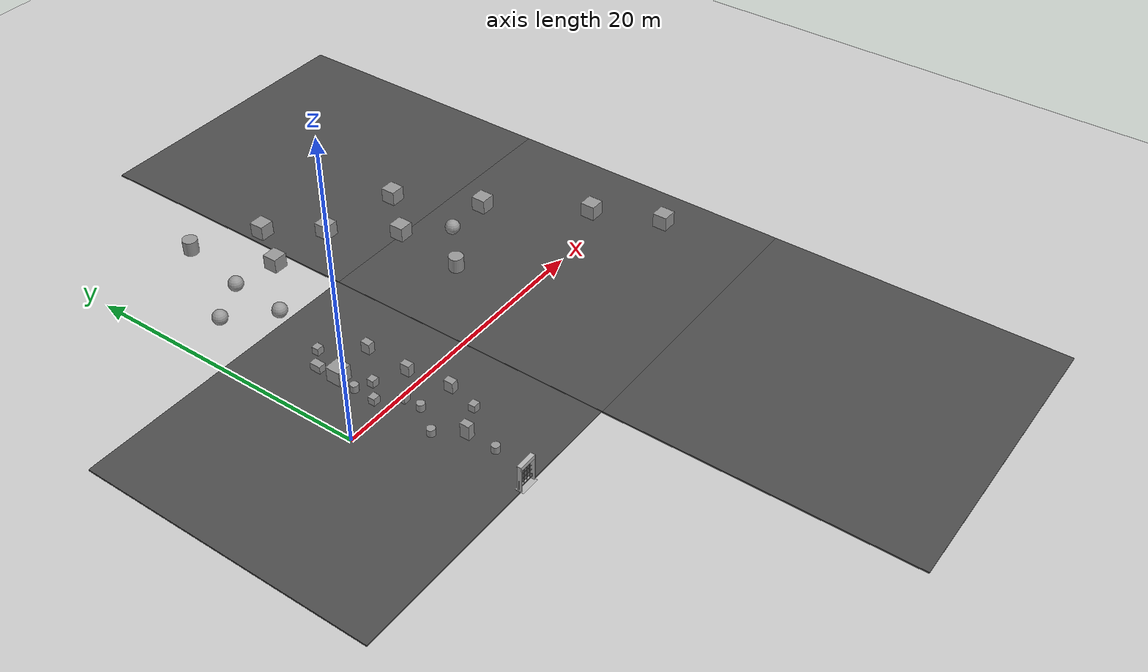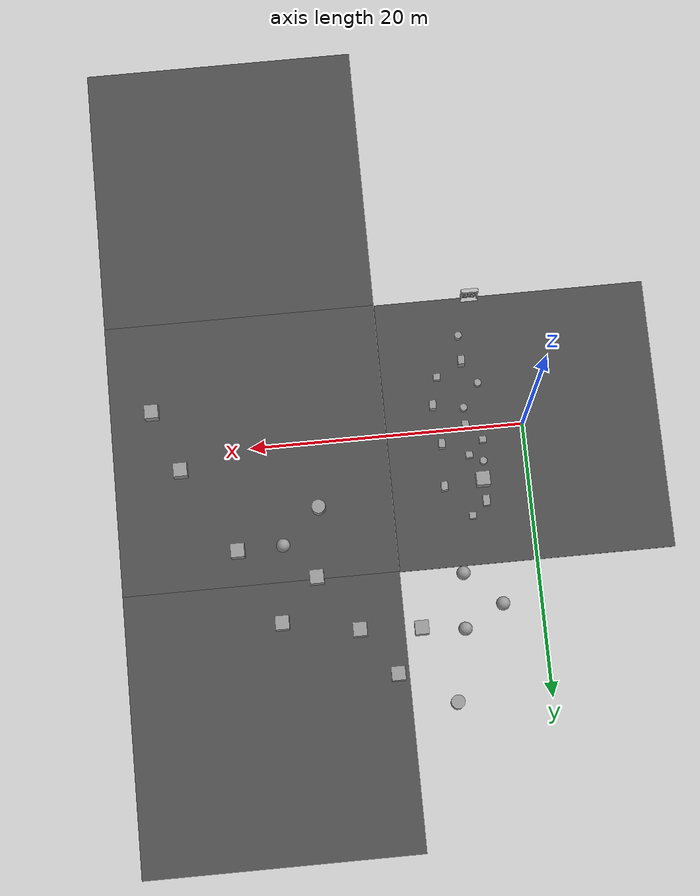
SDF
<sdf version="1.7">
 <world name="default">
  <model name="ground_plane">
   <static>1</static>
   <link name="link">
    <collision name="collision">
     <geometry><plane><normal>0 0 1</normal><size>100 100</size></plane></geometry>
     <surface>
      <contact><collide_bitmask>65535</collide_bitmask></contact>
      <friction><ode><mu>100</mu><mu2>50</mu2></ode></friction>
     </surface>
    </collision>
    <visual name="visual">
     <cast_shadows>0</cast_shadows>
     <geometry><plane><normal>0 0 1</normal><size>100 100</size></plane></geometry>
     <material>
      <script><uri>file://media/materials/scripts/gazebo.material</uri><name>Gazebo/Grey</name></script>
     </material>
    </visual>
   </link>
  </model>
  <model name="asphalt_plane">
   <static>1</static>
   <link name="link">
    <collision name="collision"><geometry><box><size>20 20 0.1</size></box></geometry></collision>
    <visual name="visual">
     <cast_shadows>0</cast_shadows>
     <geometry><box><size>20 20 0.1</size></box></geometry>
     <material>
      <script>
       <uri>model://asphalt_plane/materials/scripts</uri>
       <uri>model://asphalt_plane/materials/textures</uri>
       <name>vrc/asphalt</name>
      </script>
     </material>
    </visual>
   </link>
   <pose>-0.033327 0.054034 0 0 -0 0</pose>
  </model>
  <model name="asphalt_plane_clone">
   <static>1</static>
   <link name="link">
    <collision name="collision"><geometry><box><size>20 20 0.1</size></box></geometry></collision>
    <visual name="visual">
     <cast_shadows>0</cast_shadows>
     <geometry><box><size>20 20 0.1</size></box></geometry>
     <material>
      <script>
       <uri>model://asphalt_plane/materials/scripts</uri>
       <uri>model://asphalt_plane/materials/textures</uri>
       <name>vrc/asphalt</name>
      </script>
     </material>
    </visual>
   </link>
   <pose>20 0 0 0 -0 0</pose>
  </model>
  <model name="asphalt_plane_clone_0">
   <static>1</static>
   <link name="link">
    <collision name="collision"><geometry><box><size>20 20 0.1</size></box></geometry></collision>
    <visual name="visual">
     <cast_shadows>0</cast_shadows>
     <geometry><box><size>20 20 0.1</size></box></geometry>
     <material>
      <script>
       <uri>model://asphalt_plane/materials/scripts</uri>
       <uri>model://asphalt_plane/materials/textures</uri>
       <name>vrc/asphalt</name>
      </script>
     </material>
    </visual>
   </link>
   <pose>20 -20 0 0 -0 0</pose>
  </model>
  <model name="asphalt_plane_clone_6">
   <static>1</static>
   <link name="link">
    <collision name="collision"><geometry><box><size>20 20 0.1</size></box></geometry></collision>
    <visual name="visual">
     <cast_shadows>0</cast_shadows>
     <geometry><box><size>20 20 0.1</size></box></geometry>
     <material>
      <script>
       <uri>model://asphalt_plane/materials/scripts</uri>
       <uri>model://asphalt_plane/materials/textures</uri>
       <name>vrc/asphalt</name>
      </script>
     </material>
    </visual>
   </link>
   <pose>20 20 0 0 -0 0</pose>
  </model>
  <model name="unit_box">
   <pose>3.3249 3.92529 0.549996 9e-06 1e-06 0</pose>
   <link name="link">
    <inertial>
     <mass>1</mass>
     <inertia>
      <ixx>0.166667</ixx>
      <ixy>0</ixy>
      <ixz>0</ixz>
      <iyy>0.166667</iyy>
      <iyz>0</iyz>
      <izz>0.166667</izz>
     </inertia>
    </inertial>
    <collision name="collision"><geometry><box><size>1 1 1</size></box></geometry></collision>
    <visual name="visual">
     <geometry><box><size>1 1 1</size></box></geometry>
     <material>
      <script><name>Gazebo/Grey</name><uri>file://media/materials/scripts/gazebo.material</uri></script>
     </material>
    </visual>
   </link>
  </model>
  <model name="unit_box_0">
   <pose>4.32444 6.49188 0.301356 0 -0 1e-06</pose>
   <link name="link">
    <inertial>
     <mass>1</mass>
     <inertia>
      <ixx>0.166667</ixx>
      <ixy>0</ixy>
      <ixz>0</ixz>
      <iyy>0.166667</iyy>
      <iyz>0</iyz>
      <izz>0.166667</izz>
     </inertia>
    </inertial>
    <collision name="collision">
     <geometry><box><size>0.495294 0.467832 0.502712</size></box></geometry>
    </collision>
    <visual name="visual">
     <geometry><box><size>0.495294 0.467832 0.502712</size></box></geometry>
     <material>
      <script><name>Gazebo/Grey</name><uri>file://media/materials/scripts/gazebo.material</uri></script>
     </material>
    </visual>
   </link>
  </model>
  <model name="unit_box_0_clone">
   <pose>3.22245 5.47551 0.301351 -1.2e-05 -0 3e-06</pose>
   <link name="link">
    <inertial>
     <mass>1</mass>
     <inertia>
      <ixx>0.166667</ixx>
      <ixy>0</ixy>
      <ixz>0</ixz>
      <iyy>0.166667</iyy>
      <iyz>0</iyz>
      <izz>0.166667</izz>
     </inertia>
    </inertial>
    <collision name="collision">
     <geometry><box><size>0.495294 0.766084 0.502712</size></box></geometry>
    </collision>
    <visual name="visual">
     <geometry><box><size>0.495294 0.766084 0.502712</size></box></geometry>
     <material>
      <script><name>Gazebo/Grey</name><uri>file://media/materials/scripts/gazebo.material</uri></script>
     </material>
    </visual>
   </link>
  </model>
  <model name="unit_box_0_clone_2">
   <pose>3.02414 0.969262 0.301356 0 -0 1e-06</pose>
   <link name="link">
    <inertial>
     <mass>1</mass>
     <inertia>
      <ixx>0.166667</ixx>
      <ixy>0</ixy>
      <ixz>0</ixz>
      <iyy>0.166667</iyy>
      <iyz>0</iyz>
      <izz>0.166667</izz>
     </inertia>
    </inertial>
    <collision name="collision">
     <geometry><box><size>0.495294 0.467832 0.502712</size></box></geometry>
    </collision>
    <visual name="visual">
     <geometry><box><size>0.495294 0.467832 0.502712</size></box></geometry>
     <material>
      <script><name>Gazebo/Grey</name><uri>file://media/materials/scripts/gazebo.material</uri></script>
     </material>
    </visual>
   </link>
  </model>
  <model name="unit_box_0_clone_3">
   <pose>4.15818 -0.316674 0.301356 0 -0 1e-06</pose>
   <link name="link">
    <inertial>
     <mass>1</mass>
     <inertia>
      <ixx>0.166667</ixx>
      <ixy>0</ixy>
      <ixz>0</ixz>
      <iyy>0.166667</iyy>
      <iyz>0</iyz>
      <izz>0.166667</izz>
     </inertia>
    </inertial>
    <collision name="collision">
     <geometry><box><size>0.495294 0.467832 0.502712</size></box></geometry>
    </collision>
    <visual name="visual">
     <geometry><box><size>0.495294 0.467832 0.502712</size></box></geometry>
     <material>
      <script><name>Gazebo/Grey</name><uri>file://media/materials/scripts/gazebo.material</uri></script>
     </material>
    </visual>
   </link>
  </model>
  <model name="unit_box_0_clone_4">
   <pose>4.11232 2.00992 0.301356 0 -0 1e-06</pose>
   <link name="link">
    <inertial>
     <mass>1</mass>
     <inertia>
      <ixx>0.166667</ixx>
      <ixy>0</ixy>
      <ixz>0</ixz>
      <iyy>0.166667</iyy>
      <iyz>0</iyz>
      <izz>0.166667</izz>
     </inertia>
    </inertial>
    <collision name="collision">
     <geometry><box><size>0.495294 0.467832 0.502712</size></box></geometry>
    </collision>
    <visual name="visual">
     <geometry><box><size>0.495294 0.467832 0.502712</size></box></geometry>
     <material>
      <script><name>Gazebo/Grey</name><uri>file://media/materials/scripts/gazebo.material</uri></script>
     </material>
    </visual>
   </link>
  </model>
  <model name="unit_cylinder_clone_4">
   <pose>3.12569 2.54542 0.294838 6e-06 -8e-06 0.00065</pose>
   <link name="link">
    <inertial>
     <mass>1</mass>
     <inertia><ixx>0.145833</ixx><ixy>0</ixy><ixz>0</ixz><iyy>0.145833</iyy><iyz>0</iyz><izz>0.125</izz></inertia>
    </inertial>
    <collision name="collision">
     <geometry><cylinder><radius>0.264047</radius><length>0.48967</length></cylinder></geometry>
    </collision>
    <visual name="visual">
     <geometry><cylinder><radius>0.264047</radius><length>0.48967</length></cylinder></geometry>
     <material>
      <script><name>Gazebo/Grey</name><uri>file://media/materials/scripts/gazebo.material</uri></script>
     </material>
    </visual>
   </link>
  </model>
  <model name="unit_cylinder_clone_5">
   <pose>4.1551 -1.53169 0.294834 -3e-06 -3e-06 0.000421</pose>
   <link name="link">
    <inertial>
     <mass>1</mass>
     <inertia><ixx>0.145833</ixx><ixy>0</ixy><ixz>0</ixz><iyy>0.145833</iyy><iyz>0</iyz><izz>0.125</izz></inertia>
    </inertial>
    <collision name="collision">
     <geometry><cylinder><radius>0.264047</radius><length>0.48967</length></cylinder></geometry>
    </collision>
    <visual name="visual">
     <geometry><cylinder><radius>0.264047</radius><length>0.48967</length></cylinder></geometry>
     <material>
      <script><name>Gazebo/Grey</name><uri>file://media/materials/scripts/gazebo.material</uri></script>
     </material>
    </visual>
   </link>
  </model>
  <model name="unit_cylinder_clone_6">
   <pose>2.93725 -3.29398 0.294835 0 -0 0.000484</pose>
   <link name="link">
    <inertial>
     <mass>1</mass>
     <inertia><ixx>0.145833</ixx><ixy>0</ixy><ixz>0</ixz><iyy>0.145833</iyy><iyz>0</iyz><izz>0.125</izz></inertia>
    </inertial>
    <collision name="collision">
     <geometry><cylinder><radius>0.264047</radius><length>0.48967</length></cylinder></geometry>
    </collision>
    <visual name="visual">
     <geometry><cylinder><radius>0.264047</radius><length>0.48967</length></cylinder></geometry>
     <material>
      <script><name>Gazebo/Grey</name><uri>file://media/materials/scripts/gazebo.material</uri></script>
     </material>
    </visual>
   </link>
  </model>
  <model name="unit_cylinder_clone_15">
   <pose>4 -7.00002 0.294837 5e-06 -7e-06 0.000396</pose>
   <link name="link">
    <inertial>
     <mass>1</mass>
     <inertia><ixx>0.145833</ixx><ixy>0</ixy><ixz>0</ixz><iyy>0.145833</iyy><iyz>0</iyz><izz>0.125</izz></inertia>
    </inertial>
    <collision name="collision">
     <geometry><cylinder><radius>0.264047</radius><length>0.48967</length></cylinder></geometry>
    </collision>
    <visual name="visual">
     <geometry><cylinder><radius>0.264047</radius><length>0.48967</length></cylinder></geometry>
     <material>
      <script><name>Gazebo/Grey</name><uri>file://media/materials/scripts/gazebo.material</uri></script>
     </material>
    </visual>
   </link>
  </model>
  <model name="unit_box_0_clone_1_clone_2">
   <pose>5.89538 -3.99875 0.301356 0 -0 1e-06</pose>
   <link name="link">
    <inertial>
     <mass>1</mass>
     <inertia>
      <ixx>0.166667</ixx>
      <ixy>0</ixy>
      <ixz>0</ixz>
      <iyy>0.166667</iyy>
      <iyz>0</iyz>
      <izz>0.166667</izz>
     </inertia>
    </inertial>
    <collision name="collision">
     <geometry><box><size>0.495294 0.467832 0.502712</size></box></geometry>
    </collision>
    <visual name="visual">
     <geometry><box><size>0.495294 0.467832 0.502712</size></box></geometry>
     <material>
      <script><name>Gazebo/Grey</name><uri>file://media/materials/scripts/gazebo.material</uri></script>
     </material>
    </visual>
   </link>
  </model>
  <model name="unit_box_3_clone_1">
   <pose>6.15547 4.18849 0.422713 0 -0 0</pose>
   <link name="link">
    <inertial>
     <mass>1</mass>
     <inertia>
      <ixx>0.166667</ixx>
      <ixy>0</ixy>
      <ixz>0</ixz>
      <iyy>0.166667</iyy>
      <iyz>0</iyz>
      <izz>0.166667</izz>
     </inertia>
    </inertial>
    <collision name="collision">
     <geometry><box><size>0.473217 0.637104 0.745427</size></box></geometry>
    </collision>
    <visual name="visual">
     <geometry><box><size>0.473217 0.637104 0.745427</size></box></geometry>
     <material>
      <script><name>Gazebo/Grey</name><uri>file://media/materials/scripts/gazebo.material</uri></script>
     </material>
    </visual>
   </link>
  </model>
  <model name="unit_box_3_clone_3">
   <pose>4 -5 0.55 0 -0 0</pose>
   <link name="link">
    <inertial>
     <mass>1</mass>
     <inertia>
      <ixx>0.166667</ixx>
      <ixy>0</ixy>
      <ixz>0</ixz>
      <iyy>0.166667</iyy>
      <iyz>0</iyz>
      <izz>0.166667</izz>
     </inertia>
    </inertial>
    <collision name="collision"><geometry><box><size>0.473217 0.637104 1</size></box></geometry></collision>
    <visual name="visual">
     <geometry><box><size>0.473217 0.637104 1</size></box></geometry>
     <material>
      <script><name>Gazebo/Grey</name><uri>file://media/materials/scripts/gazebo.material</uri></script>
     </material>
    </visual>
   </link>
  </model>
  <model name="unit_box_3_clone_4">
   <pose>6.40553 -1.89878 0.427811 0 5e-06 -3.6e-05</pose>
   <link name="link">
    <inertial>
     <mass>1</mass>
     <inertia>
      <ixx>0.166667</ixx>
      <ixy>0</ixy>
      <ixz>0</ixz>
      <iyy>0.166667</iyy>
      <iyz>0</iyz>
      <izz>0.166667</izz>
     </inertia>
    </inertial>
    <collision name="collision">
     <geometry><box><size>0.473217 0.637104 0.755624</size></box></geometry>
    </collision>
    <visual name="visual">
     <geometry><box><size>0.473217 0.637104 0.755624</size></box></geometry>
     <material>
      <script><name>Gazebo/Grey</name><uri>file://media/materials/scripts/gazebo.material</uri></script>
     </material>
    </visual>
   </link>
  </model>
  <model name="unit_box_3_clone_5">
   <pose>6.02964 1.04247 0.43567 0 -0 0</pose>
   <link name="link">
    <inertial>
     <mass>1</mass>
     <inertia>
      <ixx>0.166667</ixx>
      <ixy>0</ixy>
      <ixz>0</ixz>
      <iyy>0.166667</iyy>
      <iyz>0</iyz>
      <izz>0.166667</izz>
     </inertia>
    </inertial>
    <collision name="collision"><geometry><box><size>0.473217 0.637104 0.77134</size></box></geometry></collision>
    <visual name="visual">
     <geometry><box><size>0.473217 0.637104 0.77134</size></box></geometry>
     <material>
      <script><name>Gazebo/Grey</name><uri>file://media/materials/scripts/gazebo.material</uri></script>
     </material>
    </visual>
   </link>
  </model>
  <model name="unit_box_4">
   <pose>15.9542 9.93417 0.549996 -7e-06 -0 -1e-06</pose>
   <link name="link">
    <inertial>
     <mass>1</mass>
     <inertia>
      <ixx>0.166667</ixx>
      <ixy>0</ixy>
      <ixz>0</ixz>
      <iyy>0.166667</iyy>
      <iyz>0</iyz>
      <izz>0.166667</izz>
     </inertia>
    </inertial>
    <collision name="collision"><geometry><box><size>1 1 1</size></box></geometry></collision>
    <visual name="visual">
     <geometry><box><size>1 1 1</size></box></geometry>
     <material>
      <script><name>Gazebo/Grey</name><uri>file://media/materials/scripts/gazebo.material</uri></script>
     </material>
    </visual>
   </link>
  </model>
  <model name="unit_sphere">
   <link name="link">
    <inertial>
     <mass>1.41372</mass>
     <inertia>
      <ixx>0.141372</ixx>
      <ixy>0</ixy>
      <ixz>0</ixz>
      <iyy>0.141372</iyy>
      <iyz>0</iyz>
      <izz>0.141372</izz>
     </inertia>
    </inertial>
    <visual name="visual">
     <geometry><sphere><radius>0.5</radius></sphere></geometry>
     <material>
      <script><name>Gazebo/Grey</name><uri>file://media/materials/scripts/gazebo.material</uri></script>
      <shader type="pixel"><normal_map>__default__</normal_map></shader>
     </material>
    </visual>
    <collision name="collision">
     <geometry><sphere><radius>0.5</radius></sphere></geometry>
     <surface>
      <friction>
       <ode><mu>1</mu><mu2>1</mu2><fdir1>0 0 0</fdir1><slip1>0</slip1><slip2>0</slip2></ode>
       <torsional>
        <coefficient>1</coefficient>
        <patch_radius>0</patch_radius>
        <surface_radius>0</surface_radius>
        <use_patch_radius>1</use_patch_radius>
        <ode><slip>0</slip></ode>
       </torsional>
      </friction>
      <bounce><restitution_coefficient>0</restitution_coefficient><threshold>1e+06</threshold></bounce>
      <contact>
       <collide_without_contact>0</collide_without_contact>
       <collide_without_contact_bitmask>1</collide_without_contact_bitmask>
       <collide_bitmask>1</collide_bitmask>
       <ode>
        <soft_cfm>0</soft_cfm>
        <soft_erp>0.2</soft_erp>
        <kp>1e+13</kp>
        <kd>1</kd>
        <max_vel>0.01</max_vel>
        <min_depth>0</min_depth>
       </ode>
       <bullet>
        <split_impulse>1</split_impulse>
        <split_impulse_penetration_threshold>-0.01</split_impulse_penetration_threshold>
        <soft_cfm>0</soft_cfm>
        <soft_erp>0.2</soft_erp>
        <kp>1e+13</kp>
        <kd>1</kd>
       </bullet>
      </contact>
     </surface>
    </collision>
   </link>
   <static>0</static>
   <pose>5.71347 14.6249 0.55 0 -0 0</pose>
  </model>
  <model name="unit_sphere_clone">
   <link name="link">
    <inertial>
     <mass>1.41372</mass>
     <inertia>
      <ixx>0.141372</ixx>
      <ixy>0</ixy>
      <ixz>0</ixz>
      <iyy>0.141372</iyy>
      <iyz>0</iyz>
      <izz>0.141372</izz>
     </inertia>
    </inertial>
    <visual name="visual">
     <geometry><sphere><radius>0.5</radius></sphere></geometry>
     <material>
      <script><name>Gazebo/Grey</name><uri>file://media/materials/scripts/gazebo.material</uri></script>
      <shader type="pixel"><normal_map>__default__</normal_map></shader>
     </material>
    </visual>
    <collision name="collision">
     <geometry><sphere><radius>0.5</radius></sphere></geometry>
     <surface>
      <friction>
       <ode><mu>1</mu><mu2>1</mu2><fdir1>0 0 0</fdir1><slip1>0</slip1><slip2>0</slip2></ode>
       <torsional>
        <coefficient>1</coefficient>
        <patch_radius>0</patch_radius>
        <surface_radius>0</surface_radius>
        <use_patch_radius>1</use_patch_radius>
        <ode><slip>0</slip></ode>
       </torsional>
      </friction>
      <bounce><restitution_coefficient>0</restitution_coefficient><threshold>1e+06</threshold></bounce>
      <contact>
       <collide_without_contact>0</collide_without_contact>
       <collide_without_contact_bitmask>1</collide_without_contact_bitmask>
       <collide_bitmask>1</collide_bitmask>
       <ode>
        <soft_cfm>0</soft_cfm>
        <soft_erp>0.2</soft_erp>
        <kp>1e+13</kp>
        <kd>1</kd>
        <max_vel>0.01</max_vel>
        <min_depth>0</min_depth>
       </ode>
       <bullet>
        <split_impulse>1</split_impulse>
        <split_impulse_penetration_threshold>-0.01</split_impulse_penetration_threshold>
        <soft_cfm>0</soft_cfm>
        <soft_erp>0.2</soft_erp>
        <kp>1e+13</kp>
        <kd>1</kd>
       </bullet>
      </contact>
     </surface>
    </collision>
   </link>
   <static>0</static>
   <pose>5.44361 10.6261 0.55 0 -0 0</pose>
  </model>
  <model name="unit_cylinder_0">
   <pose>15.381 4.88172 0.55 -0 -0 -1e-06</pose>
   <link name="link">
    <inertial>
     <mass>1</mass>
     <inertia><ixx>0.145833</ixx><ixy>0</ixy><ixz>0</ixz><iyy>0.145833</iyy><iyz>0</iyz><izz>0.125</izz></inertia>
    </inertial>
    <collision name="collision">
     <geometry><cylinder><radius>0.5</radius><length>1</length></cylinder></geometry>
    </collision>
    <visual name="visual">
     <geometry><cylinder><radius>0.5</radius><length>1</length></cylinder></geometry>
     <material>
      <script><name>Gazebo/Grey</name><uri>file://media/materials/scripts/gazebo.material</uri></script>
     </material>
    </visual>
   </link>
  </model>
  <model name="unit_sphere_clone_0">
   <link name="link">
    <inertial>
     <mass>1.41372</mass>
     <inertia>
      <ixx>0.141372</ixx>
      <ixy>0</ixy>
      <ixz>0</ixz>
      <iyy>0.141372</iyy>
      <iyz>0</iyz>
      <izz>0.141372</izz>
     </inertia>
    </inertial>
    <visual name="visual">
     <geometry><sphere><radius>0.5</radius></sphere></geometry>
     <material>
      <script><name>Gazebo/Grey</name><uri>file://media/materials/scripts/gazebo.material</uri></script>
      <shader type="pixel"><normal_map>__default__</normal_map></shader>
     </material>
    </visual>
    <collision name="collision">
     <geometry><sphere><radius>0.5</radius></sphere></geometry>
     <surface>
      <friction>
       <ode><mu>1</mu><mu2>1</mu2><fdir1>0 0 0</fdir1><slip1>0</slip1><slip2>0</slip2></ode>
       <torsional>
        <coefficient>1</coefficient>
        <patch_radius>0</patch_radius>
        <surface_radius>0</surface_radius>
        <use_patch_radius>1</use_patch_radius>
        <ode><slip>0</slip></ode>
       </torsional>
      </friction>
      <bounce><restitution_coefficient>0</restitution_coefficient><threshold>1e+06</threshold></bounce>
      <contact>
       <collide_without_contact>0</collide_without_contact>
       <collide_without_contact_bitmask>1</collide_without_contact_bitmask>
       <collide_bitmask>1</collide_bitmask>
       <ode>
        <soft_cfm>0</soft_cfm>
        <soft_erp>0.2</soft_erp>
        <kp>1e+13</kp>
        <kd>1</kd>
        <max_vel>0.01</max_vel>
        <min_depth>0</min_depth>
       </ode>
       <bullet>
        <split_impulse>1</split_impulse>
        <split_impulse_penetration_threshold>-0.01</split_impulse_penetration_threshold>
        <soft_cfm>0</soft_cfm>
        <soft_erp>0.2</soft_erp>
        <kp>1e+13</kp>
        <kd>1</kd>
       </bullet>
      </contact>
     </surface>
    </collision>
   </link>
   <static>0</static>
   <pose>2.83927 13.0704 0.55 0 -0 0</pose>
  </model>
  <model name="unit_box_4_clone">
   <pose>8.81735 14.2654 0.549996 9e-06 1e-06 0</pose>
   <link name="link">
    <inertial>
     <mass>1</mass>
     <inertia>
      <ixx>0.166667</ixx>
      <ixy>0</ixy>
      <ixz>0</ixz>
      <iyy>0.166667</iyy>
      <iyz>0</iyz>
      <izz>0.166667</izz>
     </inertia>
    </inertial>
    <collision name="collision"><geometry><box><size>1 1 1</size></box></geometry></collision>
    <visual name="visual">
     <geometry><box><size>1 1 1</size></box></geometry>
     <material>
      <script><name>Gazebo/Grey</name><uri>file://media/materials/scripts/gazebo.material</uri></script>
     </material>
    </visual>
   </link>
  </model>
  <model name="unit_cylinder_1">
   <pose>6.78699 19.7557 0.549996 1e-05 4e-06 -0.000206</pose>
   <link name="link">
    <inertial>
     <mass>1</mass>
     <inertia><ixx>0.145833</ixx><ixy>0</ixy><ixz>0</ixz><iyy>0.145833</iyy><iyz>0</iyz><izz>0.125</izz></inertia>
    </inertial>
    <collision name="collision">
     <geometry><cylinder><radius>0.5</radius><length>1</length></cylinder></geometry>
    </collision>
    <visual name="visual">
     <geometry><cylinder><radius>0.5</radius><length>1</length></cylinder></geometry>
     <material>
      <script><name>Gazebo/Grey</name><uri>file://media/materials/scripts/gazebo.material</uri></script>
     </material>
    </visual>
   </link>
  </model>
  <model name="unit_sphere_0">
   <pose>18.1703 7.41217 0.55 0 -0 0</pose>
   <link name="link">
    <inertial>
     <mass>1</mass>
     <inertia><ixx>0.1</ixx><ixy>0</ixy><ixz>0</ixz><iyy>0.1</iyy><iyz>0</iyz><izz>0.1</izz></inertia>
    </inertial>
    <collision name="collision"><geometry><sphere><radius>0.5</radius></sphere></geometry></collision>
    <visual name="visual">
     <geometry><sphere><radius>0.5</radius></sphere></geometry>
     <material>
      <script><name>Gazebo/Grey</name><uri>file://media/materials/scripts/gazebo.material</uri></script>
     </material>
    </visual>
   </link>
  </model>
  <model name="unit_box_6">
   <pose>25.1293 1.23622 0.549996 9e-06 1e-06 0</pose>
   <link name="link">
    <inertial>
     <mass>1</mass>
     <inertia>
      <ixx>0.166667</ixx>
      <ixy>0</ixy>
      <ixz>0</ixz>
      <iyy>0.166667</iyy>
      <iyz>0</iyz>
      <izz>0.166667</izz>
     </inertia>
    </inertial>
    <collision name="collision"><geometry><box><size>1 1 1</size></box></geometry></collision>
    <visual name="visual">
     <geometry><box><size>1 1 1</size></box></geometry>
     <material>
      <script><name>Gazebo/Grey</name><uri>file://media/materials/scripts/gazebo.material</uri></script>
     </material>
    </visual>
   </link>
  </model>
  <model name="unit_box_4_clone_clone">
   <pose>13.2189 13.9745 0.549996 9e-06 1e-06 0</pose>
   <link name="link">
    <inertial>
     <mass>1</mass>
     <inertia>
      <ixx>0.166667</ixx>
      <ixy>0</ixy>
      <ixz>0</ixz>
      <iyy>0.166667</iyy>
      <iyz>0</iyz>
      <izz>0.166667</izz>
     </inertia>
    </inertial>
    <collision name="collision"><geometry><box><size>1 1 1</size></box></geometry></collision>
    <visual name="visual">
     <geometry><box><size>1 1 1</size></box></geometry>
     <material>
      <script><name>Gazebo/Grey</name><uri>file://media/materials/scripts/gazebo.material</uri></script>
     </material>
    </visual>
   </link>
  </model>
  <model name="unit_box_4_clone_clone_0">
   <pose>10.7891 17.3515 0.549996 9e-06 1e-06 0</pose>
   <link name="link">
    <inertial>
     <mass>1</mass>
     <inertia>
      <ixx>0.166667</ixx>
      <ixy>0</ixy>
      <ixz>0</ixz>
      <iyy>0.166667</iyy>
      <iyz>0</iyz>
      <izz>0.166667</izz>
     </inertia>
    </inertial>
    <collision name="collision"><geometry><box><size>1 1 1</size></box></geometry></collision>
    <visual name="visual">
     <geometry><box><size>1 1 1</size></box></geometry>
     <material>
      <script><name>Gazebo/Grey</name><uri>file://media/materials/scripts/gazebo.material</uri></script>
     </material>
    </visual>
   </link>
  </model>
  <model name="unit_box_4_clone_clone_1">
   <pose>21.4596 7.50868 0.549996 9e-06 1e-06 0</pose>
   <link name="link">
    <inertial>
     <mass>1</mass>
     <inertia>
      <ixx>0.166667</ixx>
      <ixy>0</ixy>
      <ixz>0</ixz>
      <iyy>0.166667</iyy>
      <iyz>0</iyz>
      <izz>0.166667</izz>
     </inertia>
    </inertial>
    <collision name="collision"><geometry><box><size>1 1 1</size></box></geometry></collision>
    <visual name="visual">
     <geometry><box><size>1 1 1</size></box></geometry>
     <material>
      <script><name>Gazebo/Grey</name><uri>file://media/materials/scripts/gazebo.material</uri></script>
     </material>
    </visual>
   </link>
  </model>
  <model name="unit_box_4_clone_clone_2">
   <pose>18.6991 12.9908 0.549996 9e-06 1e-06 0</pose>
   <link name="link">
    <inertial>
     <mass>1</mass>
     <inertia>
      <ixx>0.166667</ixx>
      <ixy>0</ixy>
      <ixz>0</ixz>
      <iyy>0.166667</iyy>
      <iyz>0</iyz>
      <izz>0.166667</izz>
     </inertia>
    </inertial>
    <collision name="collision"><geometry><box><size>1 1 1</size></box></geometry></collision>
    <visual name="visual">
     <geometry><box><size>1 1 1</size></box></geometry>
     <material>
      <script><name>Gazebo/Grey</name><uri>file://media/materials/scripts/gazebo.material</uri></script>
     </material>
    </visual>
   </link>
  </model>
  <model name="unit_box_4_clone_clone_3">
   <pose>26.913 -3.25656 0.549996 9e-06 1e-06 0</pose>
   <link name="link">
    <inertial>
     <mass>1</mass>
     <inertia>
      <ixx>0.166667</ixx>
      <ixy>0</ixy>
      <ixz>0</ixz>
      <iyy>0.166667</iyy>
      <iyz>0</iyz>
      <izz>0.166667</izz>
     </inertia>
    </inertial>
    <collision name="collision"><geometry><box><size>1 1 1</size></box></geometry></collision>
    <visual name="visual">
     <geometry><box><size>1 1 1</size></box></geometry>
     <material>
      <script><name>Gazebo/Grey</name><uri>file://media/materials/scripts/gazebo.material</uri></script>
     </material>
    </visual>
   </link>
  </model>
  <model name="frc2016_portcullis">
   <link name="base">
    <inertial>
     <mass>50</mass>
     <pose>0 0 1.02941 0 -0 0</pose>
     <inertia><ixx>3.81711</ixx><ixy>0</ixy><ixz>0</ixz><iyy>4.87698</iyy><iyz>0</iyz><izz>1.6283</izz></inertia>
    </inertial>
    <visual name="platform">
     <pose>0 0 0.07284 0 -0 0</pose>
     <geometry><box><size>1.27 0.5842 0.003175</size></box></geometry>
    </visual>
    <collision name="platform">
     <pose>0 0 0.07284 0 -0 0</pose>
     <geometry><box><size>1.27 0.5842 0.003175</size></box></geometry>
    </collision>
    <visual name="left_column">
     <pose>0.59284 0 0.99042 0 -0 0</pose>
     <geometry><box><size>0.08375 0.28575 1.83198</size></box></geometry>
    </visual>
    <collision name="left_column">
     <pose>0.59284 0 0.99042 0 -0 0</pose>
     <geometry><box><size>0.08375 0.28575 1.83198</size></box></geometry>
    </collision>
    <visual name="right_column">
     <pose>-0.57759 0 0.99042 0 -0 0</pose>
     <geometry><box><size>0.08375 0.28575 1.83198</size></box></geometry>
    </visual>
    <collision name="right_column">
     <pose>-0.57759 0 0.99042 0 -0 0</pose>
     <geometry><box><size>0.08375 0.28575 1.83198</size></box></geometry>
    </collision>
    <visual name="top">
     <pose>-0.00034 0 1.77722 0 -0 0</pose>
     <geometry><box><size>1.22962 0.28575 0.26657</size></box></geometry>
    </visual>
    <collision name="top">
     <pose>-0.00034 0 1.77722 0 -0 0</pose>
     <geometry><box><size>1.22962 0.28575 0.26657</size></box></geometry>
    </collision>
    <visual name="castor1">
     <pose>-0.45651 -0.16234 0.03272 0 -0 0</pose>
     <geometry><sphere><radius>0.03272</radius></sphere></geometry>
    </visual>
    <collision name="castor1">
     <pose>-0.45651 -0.16234 0.03272 0 -0 0</pose>
     <geometry><sphere><radius>0.03272</radius></sphere></geometry>
    </collision>
    <visual name="castor2">
     <pose>-0.27883 0.21836 0.03272 0 -0 0</pose>
     <geometry><sphere><radius>0.03272</radius></sphere></geometry>
    </visual>
    <collision name="castor2">
     <pose>-0.27883 0.21836 0.03272 0 -0 0</pose>
     <geometry><sphere><radius>0.03272</radius></sphere></geometry>
    </collision>
    <visual name="castor3">
     <pose>0.28083 0.21906 0.03272 0 -0 0</pose>
     <geometry><sphere><radius>0.03272</radius></sphere></geometry>
    </visual>
    <collision name="castor3">
     <pose>0.28083 0.21906 0.03272 0 -0 0</pose>
     <geometry><sphere><radius>0.03272</radius></sphere></geometry>
    </collision>
    <visual name="castor4">
     <pose>0.45871 -0.16186 0.03272 0 -0 0</pose>
     <geometry><sphere><radius>0.03272</radius></sphere></geometry>
    </visual>
    <collision name="castor4">
     <pose>0.45871 -0.16186 0.03272 0 -0 0</pose>
     <geometry><sphere><radius>0.03272</radius></sphere></geometry>
    </collision>
   </link>
   <link name="gate">
    <pose>-0.0287 0.02885 0.93327 0 -0 0</pose>
    <inertial>
     <mass>2</mass>
     <inertia><ixx>3.81711</ixx><ixy>0</ixy><ixz>0</ixz><iyy>4.87698</iyy><iyz>0</iyz><izz>1.6283</izz></inertia>
    </inertial>
    <collision name="collision"><geometry><box><size>1.1938 0.02496 1.45732</size></box></geometry></collision>
    <visual name="horz_1">
     <pose>0 0 -0.70326 0 -0 0</pose>
     <geometry><box><size>1.1938 0.02496 0.0508</size></box></geometry>
     <material><ambient>0.4 0.4 0.4 1</ambient><diffuse>0.4 0.4 0.4 1</diffuse></material>
    </visual>
    <visual name="horz_2">
     <pose>0 0 -0.44926 0 -0 0</pose>
     <geometry><box><size>1.1938 0.02496 0.0508</size></box></geometry>
     <material><ambient>0.4 0.4 0.4 1</ambient><diffuse>0.4 0.4 0.4 1</diffuse></material>
    </visual>
    <visual name="horz_3">
     <pose>0 0 -0.14517 0 -0 0</pose>
     <geometry><box><size>1.1938 0.02496 0.0508</size></box></geometry>
     <material><ambient>0.4 0.4 0.4 1</ambient><diffuse>0.4 0.4 0.4 1</diffuse></material>
    </visual>
    <visual name="horz_4">
     <pose>0 0 0.16034 0 -0 0</pose>
     <geometry><box><size>1.1938 0.02496 0.0508</size></box></geometry>
     <material><ambient>0.4 0.4 0.4 1</ambient><diffuse>0.4 0.4 0.4 1</diffuse></material>
    </visual>
    <visual name="horz_5">
     <pose>0 0 0.46514 0 -0 0</pose>
     <geometry><box><size>1.1938 0.02496 0.0508</size></box></geometry>
     <material><ambient>0.4 0.4 0.4 1</ambient><diffuse>0.4 0.4 0.4 1</diffuse></material>
    </visual>
    <visual name="horz_6">
     <pose>0 0 0.72994 0 -0 0</pose>
     <geometry><box><size>1.1938 0.02496 0.0508</size></box></geometry>
     <material><ambient>0.4 0.4 0.4 1</ambient><diffuse>0.4 0.4 0.4 1</diffuse></material>
    </visual>
    <visual name="vert_1">
     <pose>-0.58448 0 0 0 -0 0</pose>
     <geometry><box><size>0.02495 0.02496 1.45732</size></box></geometry>
     <material><ambient>0.4 0.4 0.4 1</ambient><diffuse>0.4 0.4 0.4 1</diffuse></material>
    </visual>
    <visual name="vert_2">
     <pose>-0.38128 0 0 0 -0 0</pose>
     <geometry><box><size>0.0508 0.02496 1.45732</size></box></geometry>
     <material><ambient>0.4 0.4 0.4 1</ambient><diffuse>0.4 0.4 0.4 1</diffuse></material>
    </visual>
    <visual name="vert_3">
     <pose>-0.12728 0 0 0 -0 0</pose>
     <geometry><box><size>0.0508 0.02496 1.45732</size></box></geometry>
     <material><ambient>0.4 0.4 0.4 1</ambient><diffuse>0.4 0.4 0.4 1</diffuse></material>
    </visual>
    <visual name="vert_4">
     <pose>0.12672 0 0 0 -0 0</pose>
     <geometry><box><size>0.0508 0.02496 1.45732</size></box></geometry>
     <material><ambient>0.4 0.4 0.4 1</ambient><diffuse>0.4 0.4 0.4 1</diffuse></material>
    </visual>
    <visual name="vert_5">
     <pose>0.38072 0 0 0 -0 0</pose>
     <geometry><box><size>0.0508 0.02496 1.45732</size></box></geometry>
     <material><ambient>0.4 0.4 0.4 1</ambient><diffuse>0.4 0.4 0.4 1</diffuse></material>
    </visual>
    <visual name="vert_6">
     <pose>0.58392 0 0 0 -0 0</pose>
     <geometry><box><size>0.02495 0.02496 1.45732</size></box></geometry>
     <material><ambient>0.4 0.4 0.4 1</ambient><diffuse>0.4 0.4 0.4 1</diffuse></material>
    </visual>
   </link>
   <joint name="joint" type="prismatic">
    <parent>base</parent>
    <child>gate</child>
    <axis>
     <xyz>0 0 1</xyz>
     <limit><lower>0</lower><upper>1</upper></limit>
     <dynamics><spring_reference>0</spring_reference><spring_stiffness>0</spring_stiffness></dynamics>
    </axis>
   </joint>
   <pose>2.90422 -9.90267 0.05 0 -0 8.5e-05</pose>
  </model>
 </world>
</sdf>
